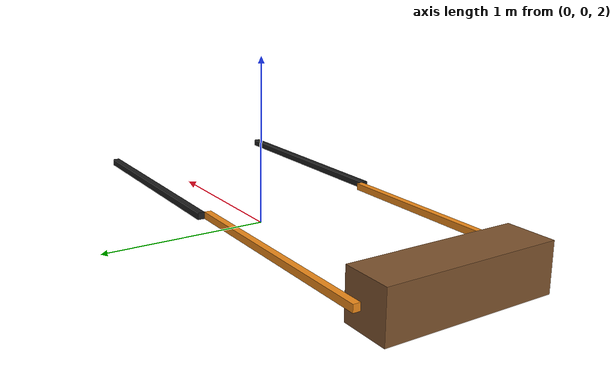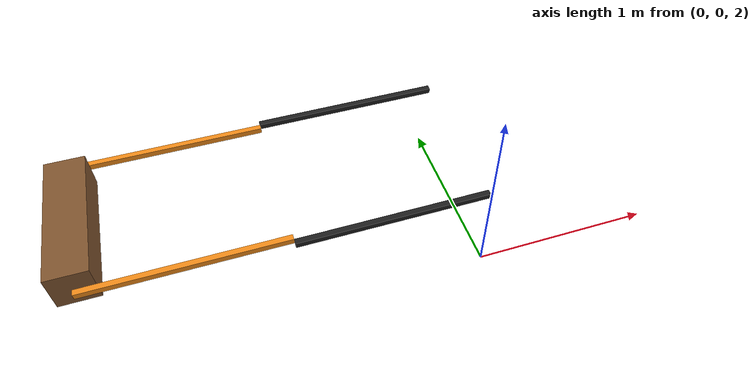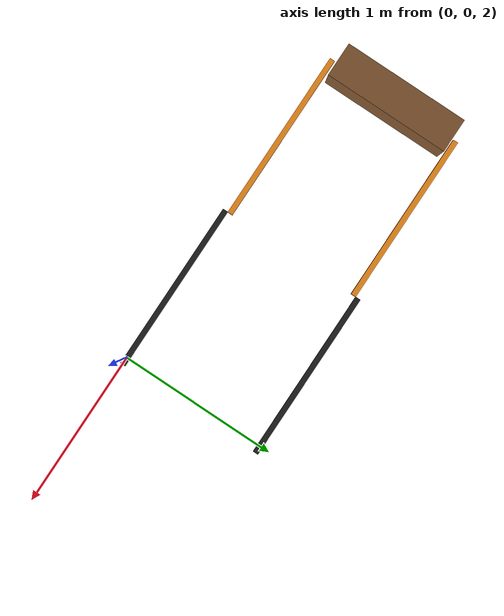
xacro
<?xml version="1.0"?>
<!-- Revolute-Revolute Manipulator -->
<robot name="rrbot" xmlns:xacro="http://www.ros.org/wiki/xacro">

  <!-- Constants for robot dimensions -->
  <xacro:property name="PI" value="3.1415926535897931"/>
  <xacro:property name="mass" value="1" /> <!-- arbitrary value for mass -->
  <xacro:property name="width" value="0.03" /> <!-- Square dimensions (widthxwidth) of beams -->
  <xacro:property name="height1" value="2.5" /> <!-- Link 1 -->
  <xacro:property name="height2" value="1" /> <!-- Link 2 -->
  <xacro:property name="height3" value="1" /> <!-- Link 3 -->
  <xacro:property name="camera_link" value="0.05" /> <!-- Size of square 'camera' box -->
  <xacro:property name="axel_offset" value="0.0" /> <!-- Space btw top of beam and the each joint -->

  <!-- Import all Gazebo-customization elements, including Gazebo colors -->
  <xacro:include filename="$(find rrbot_description)/urdf/rrbot_two.gazebo" />
  <!-- Import Rviz colors -->
  <xacro:include filename="$(find rrbot_description)/urdf/materials.xacro" />

  <!-- Used for fixing robot to Gazebo 'base_link' -->
  <link name="world"/>

  <joint name="fixed" type="fixed">
    <parent link="world"/>
    <child link="link1"/>
  </joint>

  <!-- Base Link -->
  <link name="link1">
    <collision>
      <origin xyz="0 0 ${height1/2}" rpy="0 0 0"/>
      <geometry>
	<box size="${width} ${width} ${height1}"/>
      </geometry>
    </collision>

    <inertial>
      <origin xyz="0 0 0" rpy="0 0 0"/>
      <mass value="${mass}"/>
      <inertia
	  ixx="${mass / 12.0 * (width*width + height1*height1)}" ixy="0.0" ixz="0.0"
	  iyy="${mass / 12.0 * (height1*height1 + width*width)}" iyz="0.0"
	  izz="${mass / 12.0 * (width*width + width*width)}"/>
    </inertial>
  </link>

  <joint name="joint1" type="continuous">
    <parent link="link1"/>
    <child link="link2"/>
    <origin xyz="0 ${width} ${height1 - axel_offset}" rpy="0 ${-0.5*PI} 0"/>
    <axis xyz="0 1 0"/>
    <limit effort="10000" lower="${-PI*2.0}" upper="${PI*2.0}" velocity="1"/>
    <dynamics damping="0.1"/>
  </joint>

  <!-- Middle Link -->
  <link name="link2">
    <collision>
      <origin xyz="0 0 ${height2/2 - axel_offset}" rpy="0 0 0"/>
      <geometry>
	<box size="${width} ${width} ${height2}"/>
      </geometry>
    </collision>

    <visual>
      <origin xyz="0 0 ${height2/2 - axel_offset}" rpy="0 0 0"/>
      <geometry>
	<box size="${width} ${width} ${height2}"/>
      </geometry>
      <material name="black"/>
    </visual>

    <inertial>
      <origin xyz="0 0 ${height2 - axel_offset}" rpy="0 0 0"/>
      <mass value="${mass}"/>
      <inertia
	  ixx="1" ixy="0.0" ixz="0.0"
	  iyy="1" iyz="0.0"
	  izz="0"/>
    </inertial>
  </link>

  <joint name="joint2" type="continuous">
    <parent link="link2"/>
    <child link="link3"/>
    <origin xyz="0 ${width} ${height2 - axel_offset*2}" rpy="0 0 0"/>
    <axis xyz="0 1 0"/>
    <limit effort="10000" lower="${-PI*2.0}" upper="${PI*2.0}" velocity="1"/>
    <dynamics damping="0.1"/>
  </joint>

  <!-- Top Link -->
  <link name="link3">
    <collision>
      <origin xyz="0 0 ${height3/2 - axel_offset}" rpy="0 0 0"/>
      <geometry>
	<box size="${width} ${width} ${height3}"/>
      </geometry>
    </collision>

    <visual>
      <origin xyz="0 0 ${height3/2 - axel_offset}" rpy="0 0 0"/>
      <geometry>
	<box size="${width} ${width} ${height3}"/>
      </geometry>
      <material name="orange"/>
    </visual>

    <inertial>
      <origin xyz="0 0 ${height3 - axel_offset}" rpy="0 0 0"/>
      <mass value="${mass}"/>
      <inertia
	  ixx="1" ixy="0.0" ixz="0.0"
	  iyy="1" iyz="0.0"
	  izz="0"/>
    </inertial>
  </link>

  <transmission name="tran1">
    <type>transmission_interface/SimpleTransmission</type>
    <joint name="joint1">
      <hardwareInterface>EffortJointInterface</hardwareInterface>
    </joint>
    <actuator name="motor1">
      <hardwareInterface>EffortJointInterface</hardwareInterface>
      <mechanicalReduction>1</mechanicalReduction>
    </actuator>
  </transmission>

  <transmission name="tran2">
    <type>transmission_interface/SimpleTransmission</type>
    <joint name="joint2">
      <hardwareInterface>EffortJointInterface</hardwareInterface>
    </joint>
    <actuator name="motor2">
      <hardwareInterface>EffortJointInterface</hardwareInterface>
      <mechanicalReduction>1</mechanicalReduction>
    </actuator>
  </transmission>

<!-- copy one  -->

 <joint name="fixed_copy" type="fixed">
    <parent link="world"/>
    <child link="link1_copy"/>
    <origin xyz="0 0.92 0" rpy="0 0 ${PI}"/>
  </joint>

  <!-- Base Link -->
  <link name="link1_copy">
    <collision>
      <origin xyz="0 0.0 ${height1/2}" rpy="0 0 0"/>
      <geometry>
	<box size="${width} ${width} ${height1}"/>
      </geometry>
    </collision>

    <inertial>
      <origin xyz="0 0 0" rpy="0 0 0"/>
      <mass value="${mass}"/>
      <inertia
	  ixx="${mass / 12.0 * (width*width + height1*height1)}" ixy="0.0" ixz="0.0"
	  iyy="${mass / 12.0 * (height1*height1 + width*width)}" iyz="0.0"
	  izz="${mass / 12.0 * (width*width + width*width)}"/>
    </inertial>
  </link>

  <joint name="joint1_copy" type="continuous">
    <parent link="link1_copy"/>
    <child link="link2_copy"/>
    <origin xyz="0 ${width} ${height1 - axel_offset}" rpy="0 ${0.5*PI} 0"/>
    <axis xyz="0 -1 0"/>
    <limit effort="10000" lower="${-PI*2.0}" upper="${PI*2.0}" velocity="1"/>
    <dynamics damping="0.1"/>
  </joint>

  <!-- Middle Link -->
  <link name="link2_copy">
    <collision>
      <origin xyz="0 0 ${height2/2 - axel_offset}" rpy="0 0 0"/>
      <geometry>
	<box size="${width} ${width} ${height2}"/>
      </geometry>
    </collision>

    <visual>
      <origin xyz="0 0 ${height2/2 - axel_offset}" rpy="0 0 0"/>
      <geometry>
	<box size="${width} ${width} ${height2}"/>
      </geometry>
      <material name="black"/>
    </visual>

    <inertial>
      <origin xyz="0 0 ${height2 - axel_offset}" rpy="0 0 0"/>
      <mass value="${mass}"/>
      <inertia
	  ixx="1" ixy="0.0" ixz="0.0"
	  iyy="1" iyz="0.0"
	  izz="0"/>
    </inertial>
  </link>

  <joint name="joint2_copy" type="continuous">
    <parent link="link2_copy"/>
    <child link="link3_copy"/>
    <origin xyz="0 ${width} ${height2 - axel_offset*2}" rpy="0 0 0"/>
    <axis xyz="0 -1 0"/>
    <limit effort="10000" lower="${-PI*2.0}" upper="${PI*2.0}" velocity="1"/>
    <dynamics damping="0.1"/>
  </joint>

  <!-- Top Link -->
  <link name="link3_copy">
    <collision>
      <origin xyz="0 0 ${height3/2 - axel_offset}" rpy="0 0 0"/>
      <geometry>
	<box size="${width} ${width} ${height3}"/>
      </geometry>
    </collision>

    <visual>
      <origin xyz="0 0 ${height3/2 - axel_offset}" rpy="0 0 0"/>
      <geometry>
	<box size="${width} ${width} ${height3}"/>
      </geometry>
      <material name="orange"/>
    </visual>

    <inertial>
      <origin xyz="0 0 ${height3 - axel_offset}" rpy="0 0 0"/>
      <mass value="${mass}"/>
      <inertia
	  ixx="1" ixy="0.0" ixz="0.0"
	  iyy="1" iyz="0.0"
	  izz="0"/>
    </inertial>
  </link>

  <link name="box">
    <visual>
      <origin xyz="0 0.37 0" rpy="0 0 0"/>
      <geometry>
	<box size="0.2 0.74 0.2"/>
      </geometry>
      <material name="brown"/>
    </visual>

    <inertial>
      <origin xyz="0 0.0 0" rpy="0 0 0"/>
      <mass value="10"/>
      <inertia
	  ixx="10" ixy="0.0" ixz="0.0"
	  iyy="10" iyz="0.0"
	  izz="0"/>
    </inertial>
  </link>

  <joint name="joint3" type="fixed">
    <parent link="link3"/>
    <child link="box"/>
    <origin xyz="0 ${width} ${height3 - axel_offset*2}" rpy="0 0 0"/>
  </joint>

  <link name="box_copy">
    <inertial>
      <origin xyz="0 0.0 0" rpy="0 0 0"/>
      <mass value="10"/>
      <inertia
	  ixx="10" ixy="0.0" ixz="0.0"
	  iyy="10" iyz="0.0"
	  izz="0"/>
    </inertial>
  </link>

  <joint name="joint3_copy" type="fixed">
    <parent link="link3_copy"/>
    <child link="box_copy"/>
    <origin xyz="0 ${width} ${height3 - axel_offset*2}" rpy="0 0 0"/>
  </joint>

  <transmission name="tran1_copy">
    <type>transmission_interface/SimpleTransmission</type>
    <joint name="joint1_copy">
      <hardwareInterface>EffortJointInterface</hardwareInterface>
    </joint>
    <actuator name="motor1_copy">
      <hardwareInterface>EffortJointInterface</hardwareInterface>
      <mechanicalReduction>1</mechanicalReduction>
    </actuator>
  </transmission>

  <transmission name="tran2_copy">
    <type>transmission_interface/SimpleTransmission</type>
    <joint name="joint2_copy">
      <hardwareInterface>EffortJointInterface</hardwareInterface>
    </joint>
    <actuator name="motor2_copy">
      <hardwareInterface>EffortJointInterface</hardwareInterface>
      <mechanicalReduction>1</mechanicalReduction>
    </actuator>
  </transmission>
</robot>
